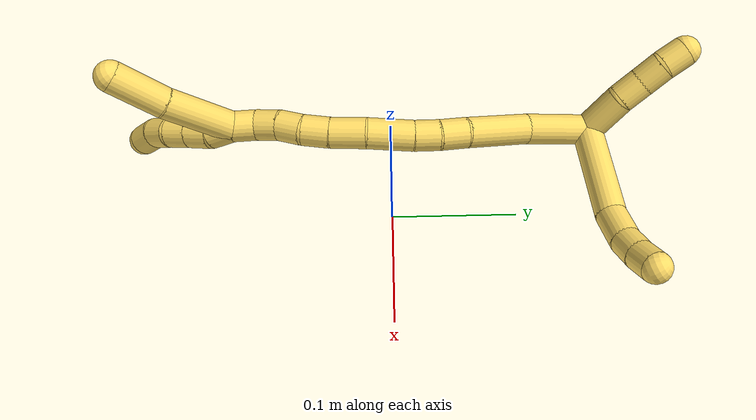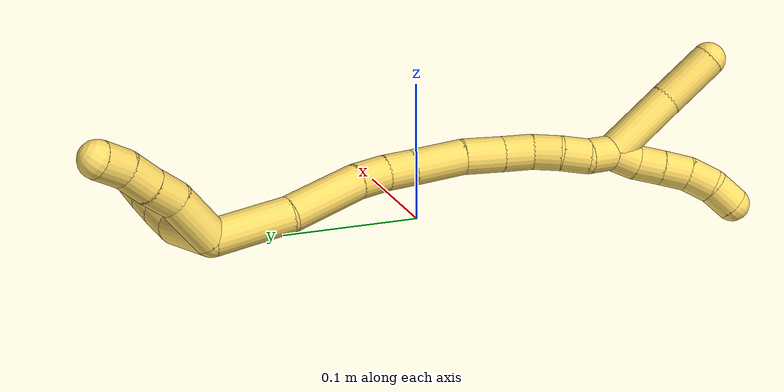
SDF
<sdf version="1.7">
 <world name="default">
  <model name="5">
   <static>0</static>
   <link name="5">
    <collision name="collision-cylinder-e_1_2_8">
     <pose>-0.03594 0.018948 0.00201 -1.46508 -1.08332 0.992154</pose>
     <geometry><cylinder><radius>0.0125</radius><length>0.081357</length></cylinder></geometry>
     <surface>
      <friction><ode><mu>1.16</mu><mu2>1.16</mu2><slip1>0</slip1><slip2>0</slip2></ode></friction>
      <contact><ode><kp>1e+06</kp><kd>1</kd><max_vel>0</max_vel><min_depth>0.001</min_depth></ode></contact>
     </surface>
    </collision>
    <visual name="visual-cylinder-e_1_2_8">
     <pose>-0.03594 0.018948 0.00201 -1.46508 -1.08332 0.992154</pose>
     <geometry><cylinder><radius>0.0125</radius><length>0.081357</length></cylinder></geometry>
     <material><ambient>1 0.858824 0.4 1</ambient></material>
    </visual>
    <collision name="collision-cylinder-e_2_8_9">
     <pose>-0.085328 0.04191 0.001173 -2.18772 -1.21989 1.86822</pose>
     <geometry><cylinder><radius>0.0125</radius><length>0.028642</length></cylinder></geometry>
     <surface>
      <friction><ode><mu>1.16</mu><mu2>1.16</mu2><slip1>0</slip1><slip2>0</slip2></ode></friction>
      <contact><ode><kp>1e+06</kp><kd>1</kd><max_vel>0</max_vel><min_depth>0.001</min_depth></ode></contact>
     </surface>
    </collision>
    <visual name="visual-cylinder-e_2_8_9">
     <pose>-0.085328 0.04191 0.001173 -2.18772 -1.21989 1.86822</pose>
     <geometry><cylinder><radius>0.0125</radius><length>0.028642</length></cylinder></geometry>
     <material><ambient>1 0.858824 0.4 1</ambient></material>
    </visual>
    <collision name="collision-cylinder-e_3_9_10">
     <pose>-0.107817 0.047643 -0.005591 -2.72837 -1.12895 2.50226</pose>
     <geometry><cylinder><radius>0.0125</radius><length>0.020001</length></cylinder></geometry>
     <surface>
      <friction><ode><mu>1.16</mu><mu2>1.16</mu2><slip1>0</slip1><slip2>0</slip2></ode></friction>
      <contact><ode><kp>1e+06</kp><kd>1</kd><max_vel>0</max_vel><min_depth>0.001</min_depth></ode></contact>
     </surface>
    </collision>
    <visual name="visual-cylinder-e_3_9_10">
     <pose>-0.107817 0.047643 -0.005591 -2.72837 -1.12895 2.50226</pose>
     <geometry><cylinder><radius>0.0125</radius><length>0.020001</length></cylinder></geometry>
     <material><ambient>1 0.858824 0.4 1</ambient></material>
    </visual>
    <collision name="collision-cylinder-e_4_10_6">
     <pose>-0.12553 0.050279 -0.014401 -2.95596 -1.0497 2.82279</pose>
     <geometry><cylinder><radius>0.0125</radius><length>0.02</length></cylinder></geometry>
     <surface>
      <friction><ode><mu>1.16</mu><mu2>1.16</mu2><slip1>0</slip1><slip2>0</slip2></ode></friction>
      <contact><ode><kp>1e+06</kp><kd>1</kd><max_vel>0</max_vel><min_depth>0.001</min_depth></ode></contact>
     </surface>
    </collision>
    <visual name="visual-cylinder-e_4_10_6">
     <pose>-0.12553 0.050279 -0.014401 -2.95596 -1.0497 2.82279</pose>
     <geometry><cylinder><radius>0.0125</radius><length>0.02</length></cylinder></geometry>
     <material><ambient>1 0.858824 0.4 1</ambient></material>
    </visual>
    <collision name="collision-cylinder-e_1_2_11">
     <pose>0.001088 -0.005246 -0.018229 2.86139 0.057278 0.400814</pose>
     <geometry><cylinder><radius>0.0125</radius><length>0.038</length></cylinder></geometry>
     <surface>
      <friction><ode><mu>1.16</mu><mu2>1.16</mu2><slip1>0</slip1><slip2>0</slip2></ode></friction>
      <contact><ode><kp>1e+06</kp><kd>1</kd><max_vel>0</max_vel><min_depth>0.001</min_depth></ode></contact>
     </surface>
    </collision>
    <visual name="visual-cylinder-e_1_2_11">
     <pose>0.001088 -0.005246 -0.018229 2.86139 0.057278 0.400814</pose>
     <geometry><cylinder><radius>0.0125</radius><length>0.038</length></cylinder></geometry>
     <material><ambient>1 0.858824 0.4 1</ambient></material>
    </visual>
    <collision name="collision-cylinder-e_2_11_12">
     <pose>0.004709 -0.011352 -0.046669 3.05751 0.242368 2.47641</pose>
     <geometry><cylinder><radius>0.0125</radius><length>0.021111</length></cylinder></geometry>
     <surface>
      <friction><ode><mu>1.16</mu><mu2>1.16</mu2><slip1>0</slip1><slip2>0</slip2></ode></friction>
      <contact><ode><kp>1e+06</kp><kd>1</kd><max_vel>0</max_vel><min_depth>0.001</min_depth></ode></contact>
     </surface>
    </collision>
    <visual name="visual-cylinder-e_2_11_12">
     <pose>0.004709 -0.011352 -0.046669 3.05751 0.242368 2.47641</pose>
     <geometry><cylinder><radius>0.0125</radius><length>0.021111</length></cylinder></geometry>
     <material><ambient>1 0.858824 0.4 1</ambient></material>
    </visual>
    <collision name="collision-cylinder-e_3_12_13">
     <pose>0.009009 -0.013525 -0.067062 3.01345 0.170446 1.85331</pose>
     <geometry><cylinder><radius>0.0125</radius><length>0.020835</length></cylinder></geometry>
     <surface>
      <friction><ode><mu>1.16</mu><mu2>1.16</mu2><slip1>0</slip1><slip2>0</slip2></ode></friction>
      <contact><ode><kp>1e+06</kp><kd>1</kd><max_vel>0</max_vel><min_depth>0.001</min_depth></ode></contact>
     </surface>
    </collision>
    <visual name="visual-cylinder-e_3_12_13">
     <pose>0.009009 -0.013525 -0.067062 3.01345 0.170446 1.85331</pose>
     <geometry><cylinder><radius>0.0125</radius><length>0.020835</length></cylinder></geometry>
     <material><ambient>1 0.858824 0.4 1</ambient></material>
    </visual>
    <collision name="collision-cylinder-e_4_13_5">
     <pose>0.014067 -0.014388 -0.086705 -3.09423 0.334431 -2.86277</pose>
     <geometry><cylinder><radius>0.0125</radius><length>0.020054</length></cylinder></geometry>
     <surface>
      <friction><ode><mu>1.16</mu><mu2>1.16</mu2><slip1>0</slip1><slip2>0</slip2></ode></friction>
      <contact><ode><kp>1e+06</kp><kd>1</kd><max_vel>0</max_vel><min_depth>0.001</min_depth></ode></contact>
     </surface>
    </collision>
    <visual name="visual-cylinder-e_4_13_5">
     <pose>0.014067 -0.014388 -0.086705 -3.09423 0.334431 -2.86277</pose>
     <geometry><cylinder><radius>0.0125</radius><length>0.020054</length></cylinder></geometry>
     <material><ambient>1 0.858824 0.4 1</ambient></material>
    </visual>
    <collision name="collision-cylinder-e_1_2_14">
     <pose>-0.007693 -0.01782 0.018832 0.757806 -0.288434 -0.115512</pose>
     <geometry><cylinder><radius>0.0125</radius><length>0.054088</length></cylinder></geometry>
     <surface>
      <friction><ode><mu>1.16</mu><mu2>1.16</mu2><slip1>0</slip1><slip2>0</slip2></ode></friction>
      <contact><ode><kp>1e+06</kp><kd>1</kd><max_vel>0</max_vel><min_depth>0.001</min_depth></ode></contact>
     </surface>
    </collision>
    <visual name="visual-cylinder-e_1_2_14">
     <pose>-0.007693 -0.01782 0.018832 0.757806 -0.288434 -0.115512</pose>
     <geometry><cylinder><radius>0.0125</radius><length>0.054088</length></cylinder></geometry>
     <material><ambient>1 0.858824 0.4 1</ambient></material>
    </visual>
    <collision name="collision-cylinder-e_2_14_15">
     <pose>-0.028086 -0.053269 0.054316 0.813859 -0.482465 -0.211276</pose>
     <geometry><cylinder><radius>0.0125</radius><length>0.054749</length></cylinder></geometry>
     <surface>
      <friction><ode><mu>1.16</mu><mu2>1.16</mu2><slip1>0</slip1><slip2>0</slip2></ode></friction>
      <contact><ode><kp>1e+06</kp><kd>1</kd><max_vel>0</max_vel><min_depth>0.001</min_depth></ode></contact>
     </surface>
    </collision>
    <visual name="visual-cylinder-e_2_14_15">
     <pose>-0.028086 -0.053269 0.054316 0.813859 -0.482465 -0.211276</pose>
     <geometry><cylinder><radius>0.0125</radius><length>0.054749</length></cylinder></geometry>
     <material><ambient>1 0.858824 0.4 1</ambient></material>
    </visual>
    <collision name="collision-cylinder-e_3_15_16">
     <pose>-0.044909 -0.077587 0.078919 0.699509 -0.377629 -0.139176</pose>
     <geometry><cylinder><radius>0.0125</radius><length>0.022357</length></cylinder></geometry>
     <surface>
      <friction><ode><mu>1.16</mu><mu2>1.16</mu2><slip1>0</slip1><slip2>0</slip2></ode></friction>
      <contact><ode><kp>1e+06</kp><kd>1</kd><max_vel>0</max_vel><min_depth>0.001</min_depth></ode></contact>
     </surface>
    </collision>
    <visual name="visual-cylinder-e_3_15_16">
     <pose>-0.044909 -0.077587 0.078919 0.699509 -0.377629 -0.139176</pose>
     <geometry><cylinder><radius>0.0125</radius><length>0.022357</length></cylinder></geometry>
     <material><ambient>1 0.858824 0.4 1</ambient></material>
    </visual>
    <collision name="collision-cylinder-e_4_16_17">
     <pose>-0.05149 -0.090575 0.09467 0.679176 -0.240594 -0.085356</pose>
     <geometry><cylinder><radius>0.0125</radius><length>0.020646</length></cylinder></geometry>
     <surface>
      <friction><ode><mu>1.16</mu><mu2>1.16</mu2><slip1>0</slip1><slip2>0</slip2></ode></friction>
      <contact><ode><kp>1e+06</kp><kd>1</kd><max_vel>0</max_vel><min_depth>0.001</min_depth></ode></contact>
     </surface>
    </collision>
    <visual name="visual-cylinder-e_4_16_17">
     <pose>-0.05149 -0.090575 0.09467 0.679176 -0.240594 -0.085356</pose>
     <geometry><cylinder><radius>0.0125</radius><length>0.020646</length></cylinder></geometry>
     <material><ambient>1 0.858824 0.4 1</ambient></material>
    </visual>
    <collision name="collision-cylinder-e_5_17_18">
     <pose>-0.057228 -0.109231 0.116074 0.737512 -0.176524 -0.068366</pose>
     <geometry><cylinder><radius>0.0125</radius><length>0.037337</length></cylinder></geometry>
     <surface>
      <friction><ode><mu>1.16</mu><mu2>1.16</mu2><slip1>0</slip1><slip2>0</slip2></ode></friction>
      <contact><ode><kp>1e+06</kp><kd>1</kd><max_vel>0</max_vel><min_depth>0.001</min_depth></ode></contact>
     </surface>
    </collision>
    <visual name="visual-cylinder-e_5_17_18">
     <pose>-0.057228 -0.109231 0.116074 0.737512 -0.176524 -0.068366</pose>
     <geometry><cylinder><radius>0.0125</radius><length>0.037337</length></cylinder></geometry>
     <material><ambient>1 0.858824 0.4 1</ambient></material>
    </visual>
    <collision name="collision-cylinder-e_6_18_19">
     <pose>-0.061766 -0.130019 0.141318 0.626727 -0.087441 -0.028351</pose>
     <geometry><cylinder><radius>0.0125</radius><length>0.028858</length></cylinder></geometry>
     <surface>
      <friction><ode><mu>1.16</mu><mu2>1.16</mu2><slip1>0</slip1><slip2>0</slip2></ode></friction>
      <contact><ode><kp>1e+06</kp><kd>1</kd><max_vel>0</max_vel><min_depth>0.001</min_depth></ode></contact>
     </surface>
    </collision>
    <visual name="visual-cylinder-e_6_18_19">
     <pose>-0.061766 -0.130019 0.141318 0.626727 -0.087441 -0.028351</pose>
     <geometry><cylinder><radius>0.0125</radius><length>0.028858</length></cylinder></geometry>
     <material><ambient>1 0.858824 0.4 1</ambient></material>
    </visual>
    <collision name="collision-cylinder-e_7_19_20">
     <pose>-0.063148 -0.145385 0.161468 0.683971 -0.011094 -0.003949</pose>
     <geometry><cylinder><radius>0.0125</radius><length>0.021955</length></cylinder></geometry>
     <surface>
      <friction><ode><mu>1.16</mu><mu2>1.16</mu2><slip1>0</slip1><slip2>0</slip2></ode></friction>
      <contact><ode><kp>1e+06</kp><kd>1</kd><max_vel>0</max_vel><min_depth>0.001</min_depth></ode></contact>
     </surface>
    </collision>
    <visual name="visual-cylinder-e_7_19_20">
     <pose>-0.063148 -0.145385 0.161468 0.683971 -0.011094 -0.003949</pose>
     <geometry><cylinder><radius>0.0125</radius><length>0.021955</length></cylinder></geometry>
     <material><ambient>1 0.858824 0.4 1</ambient></material>
    </visual>
    <collision name="collision-cylinder-e_8_20_21">
     <pose>-0.061235 -0.158283 0.177745 0.654494 0.204851 0.069753</pose>
     <geometry><cylinder><radius>0.0125</radius><length>0.020004</length></cylinder></geometry>
     <surface>
      <friction><ode><mu>1.16</mu><mu2>1.16</mu2><slip1>0</slip1><slip2>0</slip2></ode></friction>
      <contact><ode><kp>1e+06</kp><kd>1</kd><max_vel>0</max_vel><min_depth>0.001</min_depth></ode></contact>
     </surface>
    </collision>
    <visual name="visual-cylinder-e_8_20_21">
     <pose>-0.061235 -0.158283 0.177745 0.654494 0.204851 0.069753</pose>
     <geometry><cylinder><radius>0.0125</radius><length>0.020004</length></cylinder></geometry>
     <material><ambient>1 0.858824 0.4 1</ambient></material>
    </visual>
    <collision name="collision-cylinder-e_9_21_22">
     <pose>-0.058291 -0.169192 0.194159 0.519818 0.091115 0.024245</pose>
     <geometry><cylinder><radius>0.0125</radius><length>0.020003</length></cylinder></geometry>
     <surface>
      <friction><ode><mu>1.16</mu><mu2>1.16</mu2><slip1>0</slip1><slip2>0</slip2></ode></friction>
      <contact><ode><kp>1e+06</kp><kd>1</kd><max_vel>0</max_vel><min_depth>0.001</min_depth></ode></contact>
     </surface>
    </collision>
    <visual name="visual-cylinder-e_9_21_22">
     <pose>-0.058291 -0.169192 0.194159 0.519818 0.091115 0.024245</pose>
     <geometry><cylinder><radius>0.0125</radius><length>0.020003</length></cylinder></geometry>
     <material><ambient>1 0.858824 0.4 1</ambient></material>
    </visual>
    <collision name="collision-cylinder-e_10_22_1">
     <pose>-0.059723 -0.179847 0.210676 0.627365 -0.236361 -0.076995</pose>
     <geometry><cylinder><radius>0.0125</radius><length>0.020003</length></cylinder></geometry>
     <surface>
      <friction><ode><mu>1.16</mu><mu2>1.16</mu2><slip1>0</slip1><slip2>0</slip2></ode></friction>
      <contact><ode><kp>1e+06</kp><kd>1</kd><max_vel>0</max_vel><min_depth>0.001</min_depth></ode></contact>
     </surface>
    </collision>
    <visual name="visual-cylinder-e_10_22_1">
     <pose>-0.059723 -0.179847 0.210676 0.627365 -0.236361 -0.076995</pose>
     <geometry><cylinder><radius>0.0125</radius><length>0.020003</length></cylinder></geometry>
     <material><ambient>1 0.858824 0.4 1</ambient></material>
    </visual>
    <collision name="collision-cylinder-e_1_1_23">
     <pose>-0.061985 -0.18772 0.22831 0.218229 0.007954 0.000871</pose>
     <geometry><cylinder><radius>0.0125</radius><length>0.02</length></cylinder></geometry>
     <surface>
      <friction><ode><mu>1.16</mu><mu2>1.16</mu2><slip1>0</slip1><slip2>0</slip2></ode></friction>
      <contact><ode><kp>1e+06</kp><kd>1</kd><max_vel>0</max_vel><min_depth>0.001</min_depth></ode></contact>
     </surface>
    </collision>
    <visual name="visual-cylinder-e_1_1_23">
     <pose>-0.061985 -0.18772 0.22831 0.218229 0.007954 0.000871</pose>
     <geometry><cylinder><radius>0.0125</radius><length>0.02</length></cylinder></geometry>
     <material><ambient>1 0.858824 0.4 1</ambient></material>
    </visual>
    <collision name="collision-cylinder-e_2_23_24">
     <pose>-0.059987 -0.194351 0.246812 0.472405 0.193075 0.046609</pose>
     <geometry><cylinder><radius>0.0125</radius><length>0.02</length></cylinder></geometry>
     <surface>
      <friction><ode><mu>1.16</mu><mu2>1.16</mu2><slip1>0</slip1><slip2>0</slip2></ode></friction>
      <contact><ode><kp>1e+06</kp><kd>1</kd><max_vel>0</max_vel><min_depth>0.001</min_depth></ode></contact>
     </surface>
    </collision>
    <visual name="visual-cylinder-e_2_23_24">
     <pose>-0.059987 -0.194351 0.246812 0.472405 0.193075 0.046609</pose>
     <geometry><cylinder><radius>0.0125</radius><length>0.02</length></cylinder></geometry>
     <material><ambient>1 0.858824 0.4 1</ambient></material>
    </visual>
    <collision name="collision-cylinder-e_3_24_25">
     <pose>-0.056126 -0.203069 0.264391 0.448358 0.195484 0.044708</pose>
     <geometry><cylinder><radius>0.0125</radius><length>0.02</length></cylinder></geometry>
     <surface>
      <friction><ode><mu>1.16</mu><mu2>1.16</mu2><slip1>0</slip1><slip2>0</slip2></ode></friction>
      <contact><ode><kp>1e+06</kp><kd>1</kd><max_vel>0</max_vel><min_depth>0.001</min_depth></ode></contact>
     </surface>
    </collision>
    <visual name="visual-cylinder-e_3_24_25">
     <pose>-0.056126 -0.203069 0.264391 0.448358 0.195484 0.044708</pose>
     <geometry><cylinder><radius>0.0125</radius><length>0.02</length></cylinder></geometry>
     <material><ambient>1 0.858824 0.4 1</ambient></material>
    </visual>
    <collision name="collision-cylinder-e_4_25_26">
     <pose>-0.050227 -0.209733 0.282093 0.265781 0.406798 0.055129</pose>
     <geometry><cylinder><radius>0.0125</radius><length>0.02</length></cylinder></geometry>
     <surface>
      <friction><ode><mu>1.16</mu><mu2>1.16</mu2><slip1>0</slip1><slip2>0</slip2></ode></friction>
      <contact><ode><kp>1e+06</kp><kd>1</kd><max_vel>0</max_vel><min_depth>0.001</min_depth></ode></contact>
     </surface>
    </collision>
    <visual name="visual-cylinder-e_4_25_26">
     <pose>-0.050227 -0.209733 0.282093 0.265781 0.406798 0.055129</pose>
     <geometry><cylinder><radius>0.0125</radius><length>0.02</length></cylinder></geometry>
     <material><ambient>1 0.858824 0.4 1</ambient></material>
    </visual>
    <collision name="collision-cylinder-e_5_26_4">
     <pose>-0.043551 -0.211788 0.300571 -0.03717 0.275364 -0.005151</pose>
     <geometry><cylinder><radius>0.0125</radius><length>0.02</length></cylinder></geometry>
     <surface>
      <friction><ode><mu>1.16</mu><mu2>1.16</mu2><slip1>0</slip1><slip2>0</slip2></ode></friction>
      <contact><ode><kp>1e+06</kp><kd>1</kd><max_vel>0</max_vel><min_depth>0.001</min_depth></ode></contact>
     </surface>
    </collision>
    <visual name="visual-cylinder-e_5_26_4">
     <pose>-0.043551 -0.211788 0.300571 -0.03717 0.275364 -0.005151</pose>
     <geometry><cylinder><radius>0.0125</radius><length>0.02</length></cylinder></geometry>
     <material><ambient>1 0.858824 0.4 1</ambient></material>
    </visual>
    <collision name="collision-cylinder-e_1_1_27">
     <pose>-0.072048 -0.210646 0.226796 1.25319 -0.361378 -0.262965</pose>
     <geometry><cylinder><radius>0.0125</radius><length>0.05647</length></cylinder></geometry>
     <surface>
      <friction><ode><mu>1.16</mu><mu2>1.16</mu2><slip1>0</slip1><slip2>0</slip2></ode></friction>
      <contact><ode><kp>1e+06</kp><kd>1</kd><max_vel>0</max_vel><min_depth>0.001</min_depth></ode></contact>
     </surface>
    </collision>
    <visual name="visual-cylinder-e_1_1_27">
     <pose>-0.072048 -0.210646 0.226796 1.25319 -0.361378 -0.262965</pose>
     <geometry><cylinder><radius>0.0125</radius><length>0.05647</length></cylinder></geometry>
     <material><ambient>1 0.858824 0.4 1</ambient></material>
    </visual>
    <collision name="collision-cylinder-e_2_27_3">
     <pose>-0.087559 -0.256135 0.240243 1.32122 -0.256811 -0.199998</pose>
     <geometry><cylinder><radius>0.0125</radius><length>0.04353</length></cylinder></geometry>
     <surface>
      <friction><ode><mu>1.16</mu><mu2>1.16</mu2><slip1>0</slip1><slip2>0</slip2></ode></friction>
      <contact><ode><kp>1e+06</kp><kd>1</kd><max_vel>0</max_vel><min_depth>0.001</min_depth></ode></contact>
     </surface>
    </collision>
    <visual name="visual-cylinder-e_2_27_3">
     <pose>-0.087559 -0.256135 0.240243 1.32122 -0.256811 -0.199998</pose>
     <geometry><cylinder><radius>0.0125</radius><length>0.04353</length></cylinder></geometry>
     <material><ambient>1 0.858824 0.4 1</ambient></material>
    </visual>
    <collision name="collision-sphere-3">
     <pose>-0.093087 -0.276534 0.245443 0 -0 0</pose>
     <geometry><sphere><radius>0.0125</radius></sphere></geometry>
     <surface>
      <friction><ode><mu>1.16</mu><mu2>1.16</mu2><slip1>0</slip1><slip2>0</slip2></ode></friction>
      <contact><ode><kp>1e+06</kp><kd>1</kd><max_vel>0</max_vel><min_depth>0.001</min_depth></ode></contact>
     </surface>
    </collision>
    <visual name="visual-sphere-3">
     <pose>-0.093087 -0.276534 0.245443 0 -0 0</pose>
     <geometry><sphere><radius>0.0125</radius></sphere></geometry>
     <material><ambient>1 0.858824 0.4 1</ambient></material>
    </visual>
    <collision name="collision-sphere-27">
     <pose>-0.082031 -0.235736 0.235044 0 -0 0</pose>
     <geometry><sphere><radius>0.0125</radius></sphere></geometry>
     <surface>
      <friction><ode><mu>1.16</mu><mu2>1.16</mu2><slip1>0</slip1><slip2>0</slip2></ode></friction>
      <contact><ode><kp>1e+06</kp><kd>1</kd><max_vel>0</max_vel><min_depth>0.001</min_depth></ode></contact>
     </surface>
    </collision>
    <visual name="visual-sphere-27">
     <pose>-0.082031 -0.235736 0.235044 0 -0 0</pose>
     <geometry><sphere><radius>0.0125</radius></sphere></geometry>
     <material><ambient>1 0.858824 0.4 1</ambient></material>
    </visual>
    <collision name="collision-sphere-4">
     <pose>-0.040832 -0.21143 0.310187 0 -0 0</pose>
     <geometry><sphere><radius>0.0125</radius></sphere></geometry>
     <surface>
      <friction><ode><mu>1.16</mu><mu2>1.16</mu2><slip1>0</slip1><slip2>0</slip2></ode></friction>
      <contact><ode><kp>1e+06</kp><kd>1</kd><max_vel>0</max_vel><min_depth>0.001</min_depth></ode></contact>
     </surface>
    </collision>
    <visual name="visual-sphere-4">
     <pose>-0.040832 -0.21143 0.310187 0 -0 0</pose>
     <geometry><sphere><radius>0.0125</radius></sphere></geometry>
     <material><ambient>1 0.858824 0.4 1</ambient></material>
    </visual>
    <collision name="collision-sphere-26">
     <pose>-0.04627 -0.212146 0.290954 0 -0 0</pose>
     <geometry><sphere><radius>0.0125</radius></sphere></geometry>
     <surface>
      <friction><ode><mu>1.16</mu><mu2>1.16</mu2><slip1>0</slip1><slip2>0</slip2></ode></friction>
      <contact><ode><kp>1e+06</kp><kd>1</kd><max_vel>0</max_vel><min_depth>0.001</min_depth></ode></contact>
     </surface>
    </collision>
    <visual name="visual-sphere-26">
     <pose>-0.04627 -0.212146 0.290954 0 -0 0</pose>
     <geometry><sphere><radius>0.0125</radius></sphere></geometry>
     <material><ambient>1 0.858824 0.4 1</ambient></material>
    </visual>
    <collision name="collision-sphere-25">
     <pose>-0.054183 -0.207321 0.273231 0 -0 0</pose>
     <geometry><sphere><radius>0.0125</radius></sphere></geometry>
     <surface>
      <friction><ode><mu>1.16</mu><mu2>1.16</mu2><slip1>0</slip1><slip2>0</slip2></ode></friction>
      <contact><ode><kp>1e+06</kp><kd>1</kd><max_vel>0</max_vel><min_depth>0.001</min_depth></ode></contact>
     </surface>
    </collision>
    <visual name="visual-sphere-25">
     <pose>-0.054183 -0.207321 0.273231 0 -0 0</pose>
     <geometry><sphere><radius>0.0125</radius></sphere></geometry>
     <material><ambient>1 0.858824 0.4 1</ambient></material>
    </visual>
    <collision name="collision-sphere-24">
     <pose>-0.058068 -0.198817 0.255551 0 -0 0</pose>
     <geometry><sphere><radius>0.0125</radius></sphere></geometry>
     <surface>
      <friction><ode><mu>1.16</mu><mu2>1.16</mu2><slip1>0</slip1><slip2>0</slip2></ode></friction>
      <contact><ode><kp>1e+06</kp><kd>1</kd><max_vel>0</max_vel><min_depth>0.001</min_depth></ode></contact>
     </surface>
    </collision>
    <visual name="visual-sphere-24">
     <pose>-0.058068 -0.198817 0.255551 0 -0 0</pose>
     <geometry><sphere><radius>0.0125</radius></sphere></geometry>
     <material><ambient>1 0.858824 0.4 1</ambient></material>
    </visual>
    <collision name="collision-sphere-23">
     <pose>-0.061906 -0.189885 0.238073 0 -0 0</pose>
     <geometry><sphere><radius>0.0125</radius></sphere></geometry>
     <surface>
      <friction><ode><mu>1.16</mu><mu2>1.16</mu2><slip1>0</slip1><slip2>0</slip2></ode></friction>
      <contact><ode><kp>1e+06</kp><kd>1</kd><max_vel>0</max_vel><min_depth>0.001</min_depth></ode></contact>
     </surface>
    </collision>
    <visual name="visual-sphere-23">
     <pose>-0.061906 -0.189885 0.238073 0 -0 0</pose>
     <geometry><sphere><radius>0.0125</radius></sphere></geometry>
     <material><ambient>1 0.858824 0.4 1</ambient></material>
    </visual>
    <collision name="collision-sphere-1">
     <pose>-0.062065 -0.185555 0.218548 0 -0 0</pose>
     <geometry><sphere><radius>0.0125</radius></sphere></geometry>
     <surface>
      <friction><ode><mu>1.16</mu><mu2>1.16</mu2><slip1>0</slip1><slip2>0</slip2></ode></friction>
      <contact><ode><kp>1e+06</kp><kd>1</kd><max_vel>0</max_vel><min_depth>0.001</min_depth></ode></contact>
     </surface>
    </collision>
    <visual name="visual-sphere-1">
     <pose>-0.062065 -0.185555 0.218548 0 -0 0</pose>
     <geometry><sphere><radius>0.0125</radius></sphere></geometry>
     <material><ambient>1 0.858824 0.4 1</ambient></material>
    </visual>
    <collision name="collision-sphere-22">
     <pose>-0.057381 -0.17414 0.202804 0 -0 0</pose>
     <geometry><sphere><radius>0.0125</radius></sphere></geometry>
     <surface>
      <friction><ode><mu>1.16</mu><mu2>1.16</mu2><slip1>0</slip1><slip2>0</slip2></ode></friction>
      <contact><ode><kp>1e+06</kp><kd>1</kd><max_vel>0</max_vel><min_depth>0.001</min_depth></ode></contact>
     </surface>
    </collision>
    <visual name="visual-sphere-22">
     <pose>-0.057381 -0.17414 0.202804 0 -0 0</pose>
     <geometry><sphere><radius>0.0125</radius></sphere></geometry>
     <material><ambient>1 0.858824 0.4 1</ambient></material>
    </visual>
    <collision name="collision-sphere-21">
     <pose>-0.059201 -0.164245 0.185515 0 -0 0</pose>
     <geometry><sphere><radius>0.0125</radius></sphere></geometry>
     <surface>
      <friction><ode><mu>1.16</mu><mu2>1.16</mu2><slip1>0</slip1><slip2>0</slip2></ode></friction>
      <contact><ode><kp>1e+06</kp><kd>1</kd><max_vel>0</max_vel><min_depth>0.001</min_depth></ode></contact>
     </surface>
    </collision>
    <visual name="visual-sphere-21">
     <pose>-0.059201 -0.164245 0.185515 0 -0 0</pose>
     <geometry><sphere><radius>0.0125</radius></sphere></geometry>
     <material><ambient>1 0.858824 0.4 1</ambient></material>
    </visual>
    <collision name="collision-sphere-11">
     <pose>0.002175 -0.010492 -0.036458 0 -0 0</pose>
     <geometry><sphere><radius>0.0125</radius></sphere></geometry>
     <surface>
      <friction><ode><mu>1.16</mu><mu2>1.16</mu2><slip1>0</slip1><slip2>0</slip2></ode></friction>
      <contact><ode><kp>1e+06</kp><kd>1</kd><max_vel>0</max_vel><min_depth>0.001</min_depth></ode></contact>
     </surface>
    </collision>
    <visual name="visual-sphere-11">
     <pose>0.002175 -0.010492 -0.036458 0 -0 0</pose>
     <geometry><sphere><radius>0.0125</radius></sphere></geometry>
     <material><ambient>1 0.858824 0.4 1</ambient></material>
    </visual>
    <collision name="collision-sphere-6">
     <pose>-0.134202 0.051198 -0.019294 0 -0 0</pose>
     <geometry><sphere><radius>0.0125</radius></sphere></geometry>
     <surface>
      <friction><ode><mu>1.16</mu><mu2>1.16</mu2><slip1>0</slip1><slip2>0</slip2></ode></friction>
      <contact><ode><kp>1e+06</kp><kd>1</kd><max_vel>0</max_vel><min_depth>0.001</min_depth></ode></contact>
     </surface>
    </collision>
    <visual name="visual-sphere-6">
     <pose>-0.134202 0.051198 -0.019294 0 -0 0</pose>
     <geometry><sphere><radius>0.0125</radius></sphere></geometry>
     <material><ambient>1 0.858824 0.4 1</ambient></material>
    </visual>
    <collision name="collision-sphere-10">
     <pose>-0.116857 0.04936 -0.009508 0 -0 0</pose>
     <geometry><sphere><radius>0.0125</radius></sphere></geometry>
     <surface>
      <friction><ode><mu>1.16</mu><mu2>1.16</mu2><slip1>0</slip1><slip2>0</slip2></ode></friction>
      <contact><ode><kp>1e+06</kp><kd>1</kd><max_vel>0</max_vel><min_depth>0.001</min_depth></ode></contact>
     </surface>
    </collision>
    <visual name="visual-sphere-10">
     <pose>-0.116857 0.04936 -0.009508 0 -0 0</pose>
     <geometry><sphere><radius>0.0125</radius></sphere></geometry>
     <material><ambient>1 0.858824 0.4 1</ambient></material>
    </visual>
    <collision name="collision-sphere-9">
     <pose>-0.098776 0.045926 -0.001675 0 -0 0</pose>
     <geometry><sphere><radius>0.0125</radius></sphere></geometry>
     <surface>
      <friction><ode><mu>1.16</mu><mu2>1.16</mu2><slip1>0</slip1><slip2>0</slip2></ode></friction>
      <contact><ode><kp>1e+06</kp><kd>1</kd><max_vel>0</max_vel><min_depth>0.001</min_depth></ode></contact>
     </surface>
    </collision>
    <visual name="visual-sphere-9">
     <pose>-0.098776 0.045926 -0.001675 0 -0 0</pose>
     <geometry><sphere><radius>0.0125</radius></sphere></geometry>
     <material><ambient>1 0.858824 0.4 1</ambient></material>
    </visual>
    <collision name="collision-sphere-2">
     <geometry><sphere><radius>0.0125</radius></sphere></geometry>
     <surface>
      <friction><ode><mu>1.16</mu><mu2>1.16</mu2><slip1>0</slip1><slip2>0</slip2></ode></friction>
      <contact><ode><kp>1e+06</kp><kd>1</kd><max_vel>0</max_vel><min_depth>0.001</min_depth></ode></contact>
     </surface>
    </collision>
    <visual name="visual-sphere-2">
     <geometry><sphere><radius>0.0125</radius></sphere></geometry>
     <material><ambient>1 0.858824 0.4 1</ambient></material>
    </visual>
    <collision name="collision-sphere-19">
     <pose>-0.063027 -0.138449 0.15296 0 -0 0</pose>
     <geometry><sphere><radius>0.0125</radius></sphere></geometry>
     <surface>
      <friction><ode><mu>1.16</mu><mu2>1.16</mu2><slip1>0</slip1><slip2>0</slip2></ode></friction>
      <contact><ode><kp>1e+06</kp><kd>1</kd><max_vel>0</max_vel><min_depth>0.001</min_depth></ode></contact>
     </surface>
    </collision>
    <visual name="visual-sphere-19">
     <pose>-0.063027 -0.138449 0.15296 0 -0 0</pose>
     <geometry><sphere><radius>0.0125</radius></sphere></geometry>
     <material><ambient>1 0.858824 0.4 1</ambient></material>
    </visual>
    <collision name="collision-sphere-8">
     <pose>-0.07188 0.037895 0.004021 0 -0 0</pose>
     <geometry><sphere><radius>0.0125</radius></sphere></geometry>
     <surface>
      <friction><ode><mu>1.16</mu><mu2>1.16</mu2><slip1>0</slip1><slip2>0</slip2></ode></friction>
      <contact><ode><kp>1e+06</kp><kd>1</kd><max_vel>0</max_vel><min_depth>0.001</min_depth></ode></contact>
     </surface>
    </collision>
    <visual name="visual-sphere-8">
     <pose>-0.07188 0.037895 0.004021 0 -0 0</pose>
     <geometry><sphere><radius>0.0125</radius></sphere></geometry>
     <material><ambient>1 0.858824 0.4 1</ambient></material>
    </visual>
    <collision name="collision-sphere-12">
     <pose>0.007242 -0.012213 -0.05688 0 -0 0</pose>
     <geometry><sphere><radius>0.0125</radius></sphere></geometry>
     <surface>
      <friction><ode><mu>1.16</mu><mu2>1.16</mu2><slip1>0</slip1><slip2>0</slip2></ode></friction>
      <contact><ode><kp>1e+06</kp><kd>1</kd><max_vel>0</max_vel><min_depth>0.001</min_depth></ode></contact>
     </surface>
    </collision>
    <visual name="visual-sphere-12">
     <pose>0.007242 -0.012213 -0.05688 0 -0 0</pose>
     <geometry><sphere><radius>0.0125</radius></sphere></geometry>
     <material><ambient>1 0.858824 0.4 1</ambient></material>
    </visual>
    <collision name="collision-sphere-13">
     <pose>0.010776 -0.014837 -0.077245 0 -0 0</pose>
     <geometry><sphere><radius>0.0125</radius></sphere></geometry>
     <surface>
      <friction><ode><mu>1.16</mu><mu2>1.16</mu2><slip1>0</slip1><slip2>0</slip2></ode></friction>
      <contact><ode><kp>1e+06</kp><kd>1</kd><max_vel>0</max_vel><min_depth>0.001</min_depth></ode></contact>
     </surface>
    </collision>
    <visual name="visual-sphere-13">
     <pose>0.010776 -0.014837 -0.077245 0 -0 0</pose>
     <geometry><sphere><radius>0.0125</radius></sphere></geometry>
     <material><ambient>1 0.858824 0.4 1</ambient></material>
    </visual>
    <collision name="collision-sphere-5">
     <pose>0.017358 -0.01394 -0.096166 0 -0 0</pose>
     <geometry><sphere><radius>0.0125</radius></sphere></geometry>
     <surface>
      <friction><ode><mu>1.16</mu><mu2>1.16</mu2><slip1>0</slip1><slip2>0</slip2></ode></friction>
      <contact><ode><kp>1e+06</kp><kd>1</kd><max_vel>0</max_vel><min_depth>0.001</min_depth></ode></contact>
     </surface>
    </collision>
    <visual name="visual-sphere-5">
     <pose>0.017358 -0.01394 -0.096166 0 -0 0</pose>
     <geometry><sphere><radius>0.0125</radius></sphere></geometry>
     <material><ambient>1 0.858824 0.4 1</ambient></material>
    </visual>
    <collision name="collision-sphere-14">
     <pose>-0.015385 -0.035641 0.037664 0 -0 0</pose>
     <geometry><sphere><radius>0.0125</radius></sphere></geometry>
     <surface>
      <friction><ode><mu>1.16</mu><mu2>1.16</mu2><slip1>0</slip1><slip2>0</slip2></ode></friction>
      <contact><ode><kp>1e+06</kp><kd>1</kd><max_vel>0</max_vel><min_depth>0.001</min_depth></ode></contact>
     </surface>
    </collision>
    <visual name="visual-sphere-14">
     <pose>-0.015385 -0.035641 0.037664 0 -0 0</pose>
     <geometry><sphere><radius>0.0125</radius></sphere></geometry>
     <material><ambient>1 0.858824 0.4 1</ambient></material>
    </visual>
    <collision name="collision-sphere-15">
     <pose>-0.040787 -0.070897 0.070968 0 -0 0</pose>
     <geometry><sphere><radius>0.0125</radius></sphere></geometry>
     <surface>
      <friction><ode><mu>1.16</mu><mu2>1.16</mu2><slip1>0</slip1><slip2>0</slip2></ode></friction>
      <contact><ode><kp>1e+06</kp><kd>1</kd><max_vel>0</max_vel><min_depth>0.001</min_depth></ode></contact>
     </surface>
    </collision>
    <visual name="visual-sphere-15">
     <pose>-0.040787 -0.070897 0.070968 0 -0 0</pose>
     <geometry><sphere><radius>0.0125</radius></sphere></geometry>
     <material><ambient>1 0.858824 0.4 1</ambient></material>
    </visual>
    <collision name="collision-sphere-16">
     <pose>-0.04903 -0.084277 0.08687 0 -0 0</pose>
     <geometry><sphere><radius>0.0125</radius></sphere></geometry>
     <surface>
      <friction><ode><mu>1.16</mu><mu2>1.16</mu2><slip1>0</slip1><slip2>0</slip2></ode></friction>
      <contact><ode><kp>1e+06</kp><kd>1</kd><max_vel>0</max_vel><min_depth>0.001</min_depth></ode></contact>
     </surface>
    </collision>
    <visual name="visual-sphere-16">
     <pose>-0.04903 -0.084277 0.08687 0 -0 0</pose>
     <geometry><sphere><radius>0.0125</radius></sphere></geometry>
     <material><ambient>1 0.858824 0.4 1</ambient></material>
    </visual>
    <collision name="collision-sphere-17">
     <pose>-0.05395 -0.096872 0.102471 0 -0 0</pose>
     <geometry><sphere><radius>0.0125</radius></sphere></geometry>
     <surface>
      <friction><ode><mu>1.16</mu><mu2>1.16</mu2><slip1>0</slip1><slip2>0</slip2></ode></friction>
      <contact><ode><kp>1e+06</kp><kd>1</kd><max_vel>0</max_vel><min_depth>0.001</min_depth></ode></contact>
     </surface>
    </collision>
    <visual name="visual-sphere-17">
     <pose>-0.05395 -0.096872 0.102471 0 -0 0</pose>
     <geometry><sphere><radius>0.0125</radius></sphere></geometry>
     <material><ambient>1 0.858824 0.4 1</ambient></material>
    </visual>
    <collision name="collision-sphere-18">
     <pose>-0.060506 -0.121589 0.129676 0 -0 0</pose>
     <geometry><sphere><radius>0.0125</radius></sphere></geometry>
     <surface>
      <friction><ode><mu>1.16</mu><mu2>1.16</mu2><slip1>0</slip1><slip2>0</slip2></ode></friction>
      <contact><ode><kp>1e+06</kp><kd>1</kd><max_vel>0</max_vel><min_depth>0.001</min_depth></ode></contact>
     </surface>
    </collision>
    <visual name="visual-sphere-18">
     <pose>-0.060506 -0.121589 0.129676 0 -0 0</pose>
     <geometry><sphere><radius>0.0125</radius></sphere></geometry>
     <material><ambient>1 0.858824 0.4 1</ambient></material>
    </visual>
    <collision name="collision-sphere-20">
     <pose>-0.06327 -0.152321 0.169976 0 -0 0</pose>
     <geometry><sphere><radius>0.0125</radius></sphere></geometry>
     <surface>
      <friction><ode><mu>1.16</mu><mu2>1.16</mu2><slip1>0</slip1><slip2>0</slip2></ode></friction>
      <contact><ode><kp>1e+06</kp><kd>1</kd><max_vel>0</max_vel><min_depth>0.001</min_depth></ode></contact>
     </surface>
    </collision>
    <visual name="visual-sphere-20">
     <pose>-0.06327 -0.152321 0.169976 0 -0 0</pose>
     <geometry><sphere><radius>0.0125</radius></sphere></geometry>
     <material><ambient>1 0.858824 0.4 1</ambient></material>
    </visual>
    <inertial>
     <pose>-0.047539 -0.090856 0.101352 0 -0 0</pose>
     <mass>0.75</mass>
     <inertia><ixx>8.9e-05</ixx><ixy>0</ixy><ixz>0</ixz><iyy>8.8e-05</iyy><iyz>0</iyz><izz>0.000119</izz></inertia>
    </inertial>
   </link>
   <pose>-0.066928 0.1648 0.029521 -2.23952 0.194395 2.98151</pose>
  </model>
 </world>
</sdf>
